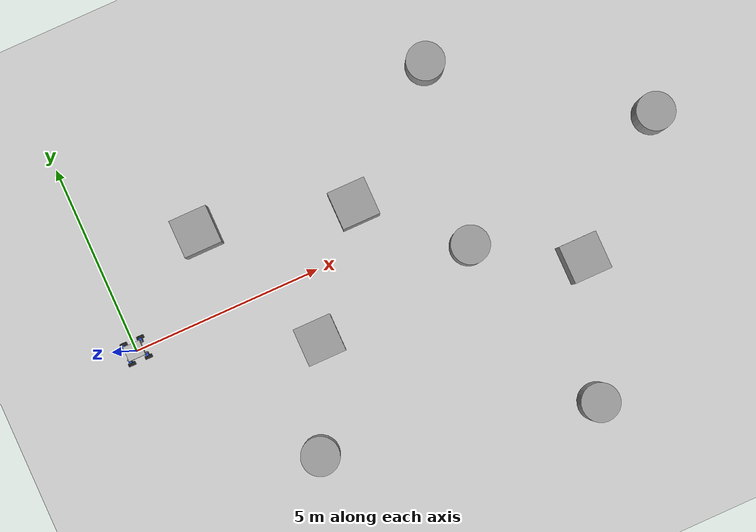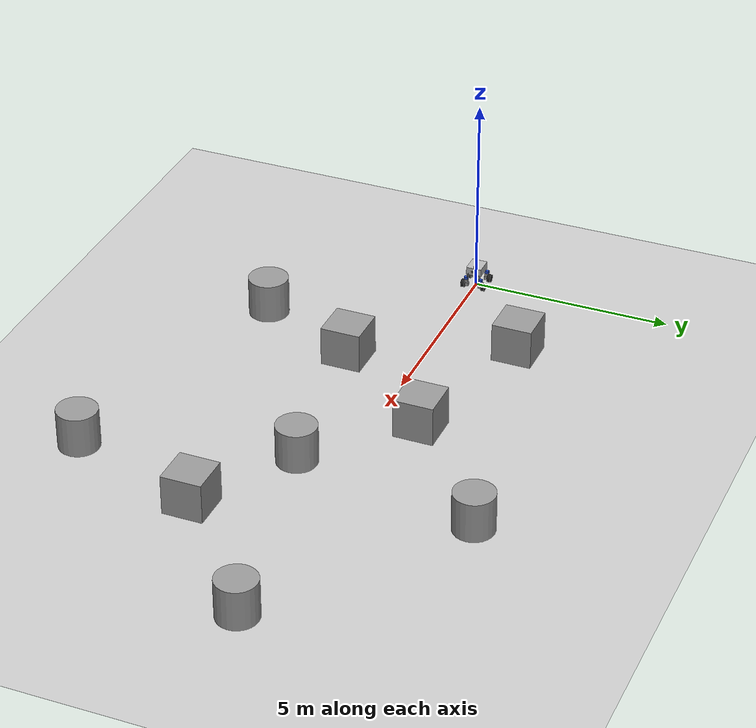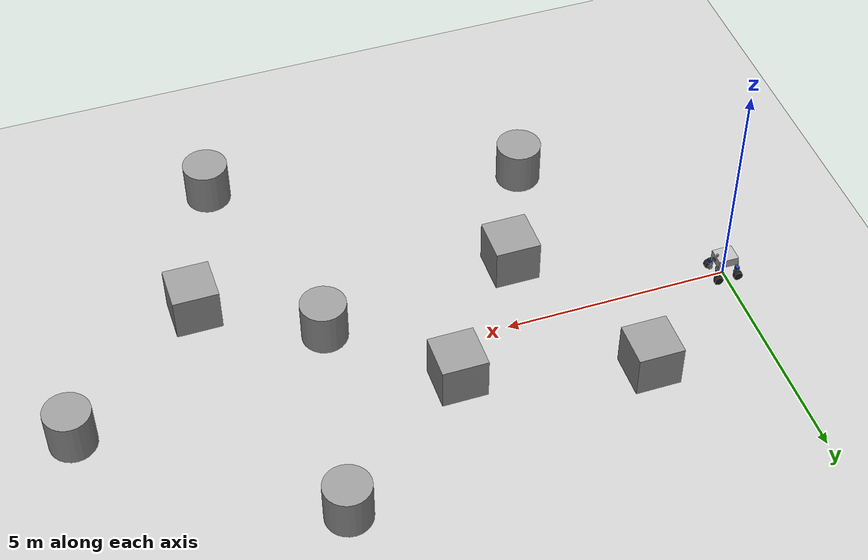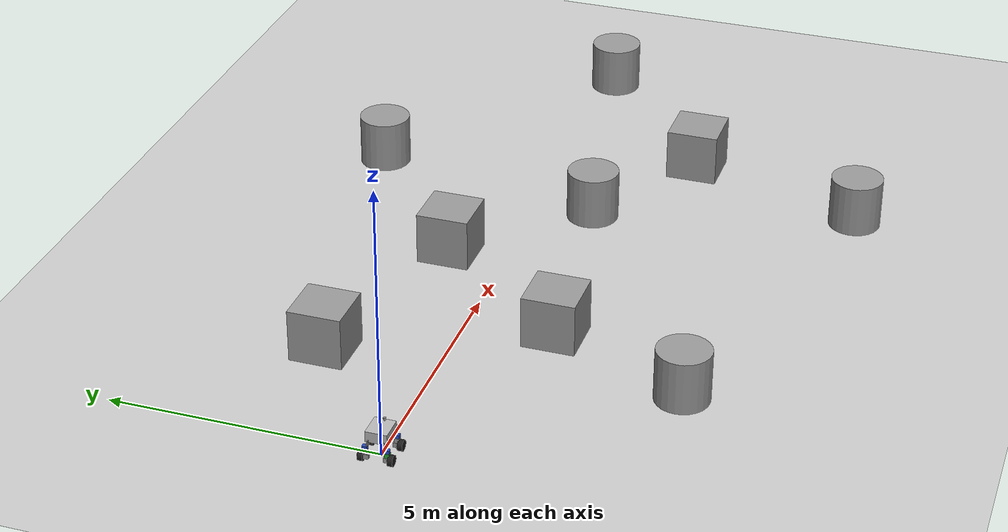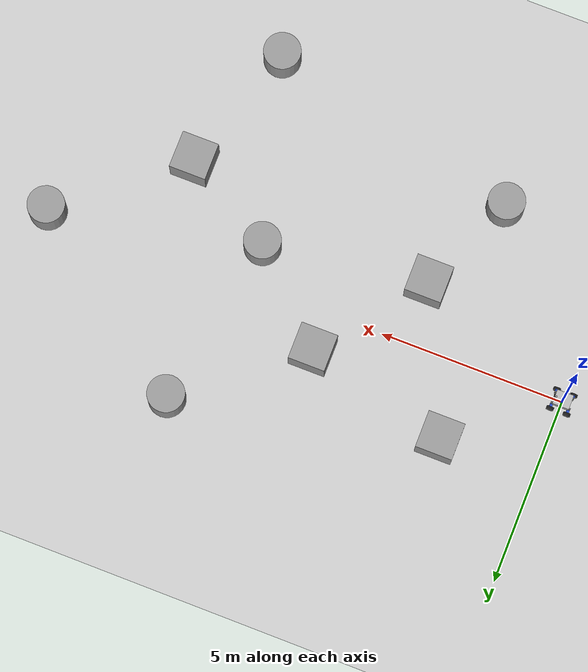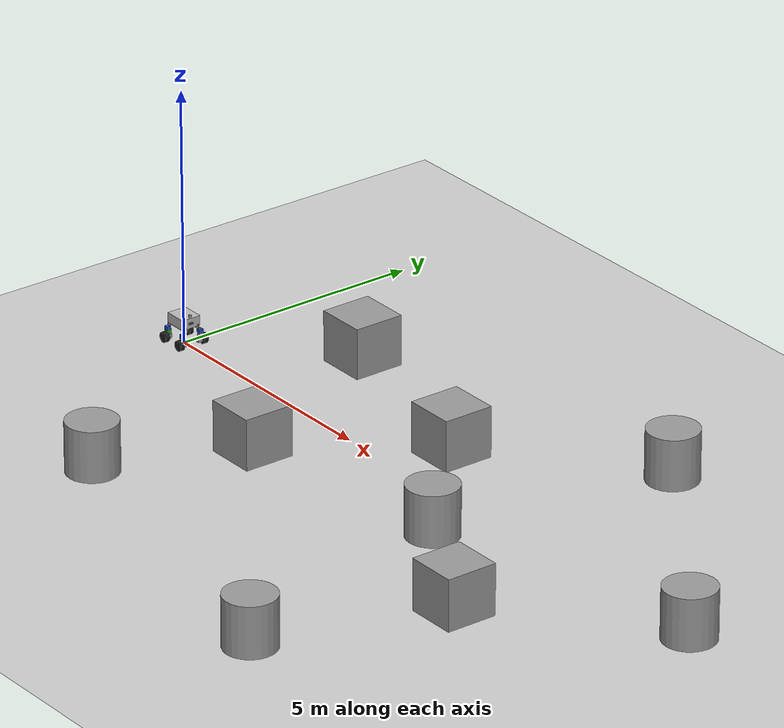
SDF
<sdf version="1.6">
 <world name="default">
  <light name="sun" type="directional">
   <pose>0 0 10 0 -0 0</pose>
   <diffuse>0.8 0.8 0.8 1</diffuse>
   <specular>0.2 0.2 0.2 1</specular>
   <attenuation>
    <range>1000</range>
    <constant>0.9</constant>
    <linear>0.01</linear>
    <quadratic>0.001</quadratic>
   </attenuation>
   <direction>-0.5 0.1 -0.9</direction>
  </light>
  <model name="ground_plane">
   <static>1</static>
   <link name="link">
    <collision name="collision">
     <geometry><plane><normal>0 0 1</normal><size>100 100</size></plane></geometry>
     <surface>
      <contact><collide_bitmask>65535</collide_bitmask></contact>
      <friction><ode><mu>100</mu><mu2>50</mu2></ode></friction>
     </surface>
    </collision>
    <visual name="visual">
     <cast_shadows>0</cast_shadows>
     <geometry><plane><normal>0 0 1</normal><size>100 100</size></plane></geometry>
     <material>
      <script><uri>file://media/materials/scripts/gazebo.material</uri><name>Gazebo/Grey</name></script>
     </material>
    </visual>
   </link>
  </model>
  <gravity>0 0 -9.8</gravity>
  <magnetic_field>6e-06 2.3e-05 -4.2e-05</magnetic_field>
  <atmosphere type="adiabatic"/>
  <physics name="default_physics" default="0" type="ode">
   <max_step_size>0.001</max_step_size>
   <real_time_factor>1</real_time_factor>
   <real_time_update_rate>1000</real_time_update_rate>
  </physics>
  <scene><ambient>0.4 0.4 0.4 1</ambient><background>0.7 0.7 0.7 1</background><shadows>1</shadows></scene>
  <audio><device>default</device></audio>
  <spherical_coordinates>
   <surface_model>EARTH_WGS84</surface_model>
   <latitude_deg>0</latitude_deg>
   <longitude_deg>0</longitude_deg>
   <elevation>0</elevation>
   <heading_deg>0</heading_deg>
  </spherical_coordinates>
  <model name="PF1">
   <link name="base_link">
    <inertial>
     <pose>0.001417 -0 -0.148259 0 -0 0</pose>
     <mass>94.564</mass>
     <inertia>
      <ixx>17.0555</ixx>
      <ixy>-5.61402e-17</ixy>
      <ixz>-0.0198593</ixz>
      <iyy>17.8862</iyy>
      <iyz>6.58404e-17</iyz>
      <izz>16.8882</izz>
     </inertia>
    </inertial>
    <collision name="base_link_collision"><geometry><box><size>0.45 0.39 0.2</size></box></geometry></collision>
    <collision name="base_link_fixed_joint_lump__base_sensor_collision_1">
     <geometry><cylinder><length>0.01</length><radius>0.005</radius></cylinder></geometry>
    </collision>
    <collision name="base_link_fixed_joint_lump__camera_link_collision_2">
     <pose>0.2375 -0.0175 0 0 -0 0</pose>
     <geometry><box><size>0.02505 0.09 0.025</size></box></geometry>
     <surface>
      <contact><ode><kp>1e+13</kp><kd>1</kd></ode></contact>
      <friction><ode><mu2>1</mu2><fdir1>0 0 0</fdir1></ode></friction>
     </surface>
    </collision>
    <collision name="base_link_fixed_joint_lump__front_lidar_collision_3">
     <pose>0.19 0 0.125 0 -0 0</pose>
     <geometry><cylinder><length>0.05</length><radius>0.025</radius></cylinder></geometry>
    </collision>
    <collision name="base_link_fixed_joint_lump__frame1_bl_collision_4">
     <pose>-0.135 0.14 -0.1 0 -0 0</pose>
     <geometry><box><size>0.27 0.02 0.09</size></box></geometry>
    </collision>
    <collision name="base_link_fixed_joint_lump__frame2_bl_collision_5">
     <pose>-0.23 0.16 -0.145 0 -0 0</pose>
     <geometry><box><size>0.08 0.02 0.05</size></box></geometry>
    </collision>
    <collision name="base_link_fixed_joint_lump__gear_bl_collision_6">
     <pose>-0.23 0.195 -0.205 0 -0 0</pose>
     <geometry><box><size>0.075 0.09 0.07</size></box></geometry>
    </collision>
    <collision name="base_link_fixed_joint_lump__frame3_bl_collision_7">
     <pose>-0.23 0.195 -0.285 0 -0 0</pose>
     <geometry><box><size>0.075 0.09 0.09</size></box></geometry>
     <surface><friction><ode><mu>2500</mu><mu2>2500</mu2></ode></friction></surface>
    </collision>
    <collision name="base_link_fixed_joint_lump__motor_bl_collision_8">
     <pose>-0.23 0.175 -0.375 0 -0 0</pose>
     <geometry><box><size>0.075 0.09 0.09</size></box></geometry>
    </collision>
    <collision name="base_link_fixed_joint_lump__frame1_br_collision_9">
     <pose>-0.135 -0.14 -0.1 0 -0 0</pose>
     <geometry><box><size>0.27 0.02 0.09</size></box></geometry>
    </collision>
    <collision name="base_link_fixed_joint_lump__frame2_br_collision_10">
     <pose>-0.23 -0.16 -0.145 0 -0 0</pose>
     <geometry><box><size>0.08 0.02 0.05</size></box></geometry>
    </collision>
    <collision name="base_link_fixed_joint_lump__gear_br_collision_11">
     <pose>-0.23 -0.195 -0.205 0 -0 0</pose>
     <geometry><box><size>0.075 0.09 0.07</size></box></geometry>
    </collision>
    <collision name="base_link_fixed_joint_lump__frame3_br_collision_12">
     <pose>-0.23 -0.195 -0.285 0 -0 0</pose>
     <geometry><box><size>0.075 0.09 0.09</size></box></geometry>
     <surface><friction><ode><mu>2500</mu><mu2>2500</mu2></ode></friction></surface>
    </collision>
    <collision name="base_link_fixed_joint_lump__motor_br_collision_13">
     <pose>-0.23 -0.175 -0.375 0 -0 0</pose>
     <geometry><box><size>0.075 0.09 0.09</size></box></geometry>
    </collision>
    <collision name="base_link_fixed_joint_lump__frame1_fl_collision_14">
     <pose>0.135 0.14 -0.1 0 -0 0</pose>
     <geometry><box><size>0.27 0.02 0.09</size></box></geometry>
    </collision>
    <collision name="base_link_fixed_joint_lump__frame2_fl_collision_15">
     <pose>0.23 0.16 -0.145 0 -0 0</pose>
     <geometry><box><size>0.08 0.02 0.05</size></box></geometry>
    </collision>
    <collision name="base_link_fixed_joint_lump__gear_fl_collision_16">
     <pose>0.23 0.195 -0.205 0 -0 0</pose>
     <geometry><box><size>0.075 0.09 0.07</size></box></geometry>
    </collision>
    <collision name="base_link_fixed_joint_lump__frame3_fl_collision_17">
     <pose>0.23 0.195 -0.285 0 -0 0</pose>
     <geometry><box><size>0.075 0.09 0.09</size></box></geometry>
     <surface><friction><ode><mu>2500</mu><mu2>2500</mu2></ode></friction></surface>
    </collision>
    <collision name="base_link_fixed_joint_lump__motor_fl_collision_18">
     <pose>0.23 0.175 -0.375 0 -0 0</pose>
     <geometry><box><size>0.075 0.09 0.09</size></box></geometry>
    </collision>
    <collision name="base_link_fixed_joint_lump__frame1_fr_collision_19">
     <pose>0.135 -0.14 -0.1 0 -0 0</pose>
     <geometry><box><size>0.27 0.02 0.09</size></box></geometry>
    </collision>
    <collision name="base_link_fixed_joint_lump__frame2_fr_collision_20">
     <pose>0.23 -0.16 -0.145 0 -0 0</pose>
     <geometry><box><size>0.08 0.02 0.05</size></box></geometry>
    </collision>
    <collision name="base_link_fixed_joint_lump__gear_fr_collision_21">
     <pose>0.23 -0.195 -0.205 0 -0 0</pose>
     <geometry><box><size>0.075 0.09 0.07</size></box></geometry>
    </collision>
    <collision name="base_link_fixed_joint_lump__frame3_fr_collision_22">
     <pose>0.23 -0.195 -0.285 0 -0 0</pose>
     <geometry><box><size>0.075 0.09 0.09</size></box></geometry>
     <surface><friction><ode><mu>2500</mu><mu2>2500</mu2></ode></friction></surface>
    </collision>
    <collision name="base_link_fixed_joint_lump__motor_fr_collision_23">
     <pose>0.23 -0.175 -0.375 0 -0 0</pose>
     <geometry><box><size>0.075 0.09 0.09</size></box></geometry>
    </collision>
    <collision name="base_link_fixed_joint_lump__imu_link_collision_24">
     <geometry><cylinder><length>0.01</length><radius>0.005</radius></cylinder></geometry>
    </collision>
    <visual name="base_link_visual"><geometry><box><size>0.45 0.39 0.2</size></box></geometry></visual>
    <visual name="base_link_fixed_joint_lump__base_sensor_visual_1">
     <geometry><cylinder><length>0.01</length><radius>0.005</radius></cylinder></geometry>
    </visual>
    <visual name="base_link_fixed_joint_lump__camera_link_visual_2">
     <pose>0.2375 -0.0175 0 1.5708 -0 1.5708</pose>
     <geometry><box><size>0.09 0.025 0.02505</size></box></geometry>
     <material>
      <script><name>Gazebo/Black</name><uri>file://media/materials/scripts/gazebo.material</uri></script>
     </material>
    </visual>
    <visual name="base_link_fixed_joint_lump__front_lidar_visual_3">
     <pose>0.19 0 0.125 0 -0 0</pose>
     <geometry><cylinder><length>0.05</length><radius>0.025</radius></cylinder></geometry>
     <material>
      <script><name>Gazebo/Grey</name><uri>file://media/materials/scripts/gazebo.material</uri></script>
     </material>
    </visual>
    <visual name="base_link_fixed_joint_lump__frame1_bl_visual_4">
     <pose>-0.135 0.14 -0.1 0 -0 0</pose>
     <geometry><box><size>0.27 0.02 0.09</size></box></geometry>
     <material>
      <script><name>Gazebo/Grey</name><uri>file://media/materials/scripts/gazebo.material</uri></script>
     </material>
    </visual>
    <visual name="base_link_fixed_joint_lump__frame2_bl_visual_5">
     <pose>-0.23 0.16 -0.145 0 -0 0</pose>
     <geometry><box><size>0.08 0.02 0.05</size></box></geometry>
     <material>
      <script><name>Gazebo/Grey</name><uri>file://media/materials/scripts/gazebo.material</uri></script>
     </material>
    </visual>
    <visual name="base_link_fixed_joint_lump__gear_bl_visual_6">
     <pose>-0.23 0.195 -0.205 0 -0 0</pose>
     <geometry><box><size>0.075 0.09 0.07</size></box></geometry>
     <material>
      <script><name>Gazebo/Blue</name><uri>file://media/materials/scripts/gazebo.material</uri></script>
     </material>
    </visual>
    <visual name="base_link_fixed_joint_lump__frame3_bl_visual_7">
     <pose>-0.23 0.195 -0.285 0 -0 0</pose>
     <geometry><box><size>0.075 0.09 0.09</size></box></geometry>
     <material>
      <script><name>Gazebo/Grey</name><uri>file://media/materials/scripts/gazebo.material</uri></script>
     </material>
    </visual>
    <visual name="base_link_fixed_joint_lump__motor_bl_visual_8">
     <pose>-0.23 0.175 -0.375 0 -0 0</pose>
     <geometry><box><size>0.075 0.09 0.09</size></box></geometry>
     <material>
      <script><name>Gazebo/Grey</name><uri>file://media/materials/scripts/gazebo.material</uri></script>
     </material>
    </visual>
    <visual name="base_link_fixed_joint_lump__frame1_br_visual_9">
     <pose>-0.135 -0.14 -0.1 0 -0 0</pose>
     <geometry><box><size>0.27 0.02 0.09</size></box></geometry>
     <material>
      <script><name>Gazebo/Grey</name><uri>file://media/materials/scripts/gazebo.material</uri></script>
     </material>
    </visual>
    <visual name="base_link_fixed_joint_lump__frame2_br_visual_10">
     <pose>-0.23 -0.16 -0.145 0 -0 0</pose>
     <geometry><box><size>0.08 0.02 0.05</size></box></geometry>
     <material>
      <script><name>Gazebo/Grey</name><uri>file://media/materials/scripts/gazebo.material</uri></script>
     </material>
    </visual>
    <visual name="base_link_fixed_joint_lump__gear_br_visual_11">
     <pose>-0.23 -0.195 -0.205 0 -0 0</pose>
     <geometry><box><size>0.075 0.09 0.07</size></box></geometry>
     <material>
      <script><name>Gazebo/Blue</name><uri>file://media/materials/scripts/gazebo.material</uri></script>
     </material>
    </visual>
    <visual name="base_link_fixed_joint_lump__frame3_br_visual_12">
     <pose>-0.23 -0.195 -0.285 0 -0 0</pose>
     <geometry><box><size>0.075 0.09 0.09</size></box></geometry>
     <material>
      <script><name>Gazebo/Green</name><uri>file://media/materials/scripts/gazebo.material</uri></script>
     </material>
    </visual>
    <visual name="base_link_fixed_joint_lump__motor_br_visual_13">
     <pose>-0.23 -0.175 -0.375 0 -0 0</pose>
     <geometry><box><size>0.075 0.09 0.09</size></box></geometry>
     <material>
      <script><name>Gazebo/Grey</name><uri>file://media/materials/scripts/gazebo.material</uri></script>
     </material>
    </visual>
    <visual name="base_link_fixed_joint_lump__frame1_fl_visual_14">
     <pose>0.135 0.14 -0.1 0 -0 0</pose>
     <geometry><box><size>0.27 0.02 0.09</size></box></geometry>
     <material>
      <script><name>Gazebo/Grey</name><uri>file://media/materials/scripts/gazebo.material</uri></script>
     </material>
    </visual>
    <visual name="base_link_fixed_joint_lump__frame2_fl_visual_15">
     <pose>0.23 0.16 -0.145 0 -0 0</pose>
     <geometry><box><size>0.08 0.02 0.05</size></box></geometry>
     <material>
      <script><name>Gazebo/Grey</name><uri>file://media/materials/scripts/gazebo.material</uri></script>
     </material>
    </visual>
    <visual name="base_link_fixed_joint_lump__gear_fl_visual_16">
     <pose>0.23 0.195 -0.205 0 -0 0</pose>
     <geometry><box><size>0.075 0.09 0.07</size></box></geometry>
     <material>
      <script><name>Gazebo/Blue</name><uri>file://media/materials/scripts/gazebo.material</uri></script>
     </material>
    </visual>
    <visual name="base_link_fixed_joint_lump__frame3_fl_visual_17">
     <pose>0.23 0.195 -0.285 0 -0 0</pose>
     <geometry><box><size>0.075 0.09 0.09</size></box></geometry>
     <material>
      <script><name>Gazebo/Grey</name><uri>file://media/materials/scripts/gazebo.material</uri></script>
     </material>
    </visual>
    <visual name="base_link_fixed_joint_lump__motor_fl_visual_18">
     <pose>0.23 0.175 -0.375 0 -0 0</pose>
     <geometry><box><size>0.075 0.09 0.09</size></box></geometry>
     <material>
      <script><name>Gazebo/Grey</name><uri>file://media/materials/scripts/gazebo.material</uri></script>
     </material>
    </visual>
    <visual name="base_link_fixed_joint_lump__frame1_fr_visual_19">
     <pose>0.135 -0.14 -0.1 0 -0 0</pose>
     <geometry><box><size>0.27 0.02 0.09</size></box></geometry>
     <material>
      <script><name>Gazebo/Grey</name><uri>file://media/materials/scripts/gazebo.material</uri></script>
     </material>
    </visual>
    <visual name="base_link_fixed_joint_lump__frame2_fr_visual_20">
     <pose>0.23 -0.16 -0.145 0 -0 0</pose>
     <geometry><box><size>0.08 0.02 0.05</size></box></geometry>
     <material>
      <script><name>Gazebo/Grey</name><uri>file://media/materials/scripts/gazebo.material</uri></script>
     </material>
    </visual>
    <visual name="base_link_fixed_joint_lump__gear_fr_visual_21">
     <pose>0.23 -0.195 -0.205 0 -0 0</pose>
     <geometry><box><size>0.075 0.09 0.07</size></box></geometry>
     <material>
      <script><name>Gazebo/Blue</name><uri>file://media/materials/scripts/gazebo.material</uri></script>
     </material>
    </visual>
    <visual name="base_link_fixed_joint_lump__frame3_fr_visual_22">
     <pose>0.23 -0.195 -0.285 0 -0 0</pose>
     <geometry><box><size>0.075 0.09 0.09</size></box></geometry>
     <material>
      <script><name>Gazebo/Grey</name><uri>file://media/materials/scripts/gazebo.material</uri></script>
     </material>
    </visual>
    <visual name="base_link_fixed_joint_lump__motor_fr_visual_23">
     <pose>0.23 -0.175 -0.375 0 -0 0</pose>
     <geometry><box><size>0.075 0.09 0.09</size></box></geometry>
     <material>
      <script><name>Gazebo/Grey</name><uri>file://media/materials/scripts/gazebo.material</uri></script>
     </material>
    </visual>
    <visual name="base_link_fixed_joint_lump__imu_link_visual_24">
     <geometry><cylinder><length>0.01</length><radius>0.005</radius></cylinder></geometry>
     <material>
      <script><name>Gazebo/Blue</name><uri>file://media/materials/scripts/gazebo.material</uri></script>
     </material>
    </visual>
    <sensor name="cameracolor" type="camera">
     <camera name="camera">
      <horizontal_fov>1.21126</horizontal_fov>
      <image><width>640</width><height>480</height><format>RGB_INT8</format></image>
      <clip><near>0.1</near><far>100</far></clip>
      <noise><type>gaussian</type><mean>0</mean><stddev>0.007</stddev></noise>
     </camera>
     <always_on>1</always_on>
     <update_rate>30</update_rate>
     <visualize>1</visualize>
     <pose>0.2375 0 0 0 -0 0</pose>
    </sensor>
    <sensor name="cameraired1" type="camera">
     <camera name="camera">
      <horizontal_fov>1.48702</horizontal_fov>
      <image><width>1280</width><height>720</height><format>L_INT8</format></image>
      <clip><near>0.1</near><far>100</far></clip>
      <noise><type>gaussian</type><mean>0</mean><stddev>0.05</stddev></noise>
     </camera>
     <always_on>1</always_on>
     <update_rate>90</update_rate>
     <visualize>0</visualize>
     <pose>0.2375 0 0 0 -0 0</pose>
    </sensor>
    <sensor name="cameraired2" type="camera">
     <camera name="camera">
      <horizontal_fov>1.48702</horizontal_fov>
      <image><width>1280</width><height>720</height><format>L_INT8</format></image>
      <clip><near>0.1</near><far>100</far></clip>
      <noise><type>gaussian</type><mean>0</mean><stddev>0.05</stddev></noise>
     </camera>
     <always_on>1</always_on>
     <update_rate>90</update_rate>
     <visualize>0</visualize>
     <pose>0.2375 0 0 0 -0 0</pose>
    </sensor>
    <sensor name="cameradepth" type="depth">
     <camera name="camera">
      <horizontal_fov>1.48702</horizontal_fov>
      <image><width>1280</width><height>720</height></image>
      <clip><near>0.1</near><far>100</far></clip>
      <noise><type>gaussian</type><mean>0</mean><stddev>0.1</stddev></noise>
     </camera>
     <always_on>1</always_on>
     <update_rate>90</update_rate>
     <visualize>0</visualize>
     <pose>0.2375 0 0 0 -0 0</pose>
    </sensor>
    <sensor name="$front_lidar_sensor" type="ray">
     <visualize>1</visualize>
     <update_rate>10</update_rate>
     <ray>
      <scan>
       <horizontal>
        <samples>400</samples>
        <resolution>1</resolution>
        <min_angle>-1.5708</min_angle>
        <max_angle>1.5708</max_angle>
       </horizontal>
       <vertical><samples>1</samples><min_angle>0</min_angle><max_angle>0</max_angle></vertical>
      </scan>
      <range><min>0.1</min><max>20</max><resolution>0.01</resolution></range>
      <noise><type>gaussian</type><mean>0</mean><stddev>0.01</stddev></noise>
     </ray>
     <plugin name="gazebo_ros_lidar_controller" filename="libgazebo_ros_laser.so">
      <topicName>scan</topicName>
      <frameName>front_lidar</frameName>
      <robotNamespace>/</robotNamespace>
     </plugin>
     <pose>0.19 0 0.125 0 -0 0</pose>
    </sensor>
    <sensor name="imu_sensor" type="imu">
     <always_on>1</always_on>
     <update_rate>100</update_rate>
     <visualize>1</visualize>
     <topic>data</topic>
     <plugin name="imu_plugin" filename="libgazebo_ros_imu_sensor.so">
      <topicName>imu/data</topicName>
      <bodyName>imu_link</bodyName>
      <updateRateHZ>10.0</updateRateHZ>
      <gaussianNoise>0.0</gaussianNoise>
      <xyzOffset>0 0 0</xyzOffset>
      <rpyOffset>0 0 0</rpyOffset>
      <frameName>imu_link</frameName>
      <robotNamespace>/</robotNamespace>
     </plugin>
    </sensor>
   </link>
   <link name="wheel_bl">
    <pose>-0.23 0.265 -0.375 0 -0 0</pose>
    <inertial>
     <mass>10</mass>
     <inertia><ixx>1</ixx><ixy>0</ixy><ixz>0</ixz><iyy>1</iyy><iyz>0</iyz><izz>1</izz></inertia>
    </inertial>
    <collision name="wheel_bl_collision">
     <pose>0 0 0 1.57 -0 0</pose>
     <geometry><cylinder><length>0.09</length><radius>0.1</radius></cylinder></geometry>
     <surface>
      <contact><ode><kp>1e+07</kp><kd>1</kd></ode></contact>
      <friction><ode><mu>200</mu><mu2>100</mu2></ode></friction>
     </surface>
    </collision>
    <visual name="wheel_bl_visual">
     <pose>0 0 0 1.57 -0 0</pose>
     <geometry><cylinder><length>0.09</length><radius>0.1</radius></cylinder></geometry>
     <material>
      <script><name>Gazebo/Black</name><uri>file://media/materials/scripts/gazebo.material</uri></script>
     </material>
    </visual>
   </link>
   <joint name="wheel_bl_to_motor_bl" type="revolute">
    <child>wheel_bl</child>
    <parent>base_link</parent>
    <axis>
     <xyz>0 1 0</xyz>
     <limit><lower>-1e+16</lower><upper>1e+16</upper></limit>
     <dynamics>
      <damping>0.1</damping>
      <friction>0</friction>
      <spring_reference>0</spring_reference>
      <spring_stiffness>0</spring_stiffness>
     </dynamics>
     <use_parent_model_frame>1</use_parent_model_frame>
    </axis>
   </joint>
   <link name="wheel_br">
    <pose>-0.23 -0.265 -0.375 0 -0 0</pose>
    <inertial>
     <mass>10</mass>
     <inertia><ixx>1</ixx><ixy>0</ixy><ixz>0</ixz><iyy>1</iyy><iyz>0</iyz><izz>1</izz></inertia>
    </inertial>
    <collision name="wheel_br_collision">
     <pose>0 0 0 1.57 -0 0</pose>
     <geometry><cylinder><length>0.09</length><radius>0.1</radius></cylinder></geometry>
     <surface>
      <contact><ode><kp>1e+07</kp><kd>1</kd></ode></contact>
      <friction><ode><mu>200</mu><mu2>100</mu2></ode></friction>
     </surface>
    </collision>
    <visual name="wheel_br_visual">
     <pose>0 0 0 1.57 -0 0</pose>
     <geometry><cylinder><length>0.09</length><radius>0.1</radius></cylinder></geometry>
     <material>
      <script><name>Gazebo/Black</name><uri>file://media/materials/scripts/gazebo.material</uri></script>
     </material>
    </visual>
   </link>
   <joint name="wheel_br_to_motor_br" type="revolute">
    <child>wheel_br</child>
    <parent>base_link</parent>
    <axis>
     <xyz>0 1 0</xyz>
     <limit><lower>-1e+16</lower><upper>1e+16</upper></limit>
     <dynamics>
      <damping>0.1</damping>
      <friction>0</friction>
      <spring_reference>0</spring_reference>
      <spring_stiffness>0</spring_stiffness>
     </dynamics>
     <use_parent_model_frame>1</use_parent_model_frame>
    </axis>
   </joint>
   <link name="wheel_fl">
    <pose>0.23 0.265 -0.375 0 -0 0</pose>
    <inertial>
     <mass>10</mass>
     <inertia><ixx>1</ixx><ixy>0</ixy><ixz>0</ixz><iyy>1</iyy><iyz>0</iyz><izz>1</izz></inertia>
    </inertial>
    <collision name="wheel_fl_collision">
     <pose>0 0 0 1.57 -0 0</pose>
     <geometry><cylinder><length>0.09</length><radius>0.1</radius></cylinder></geometry>
     <surface>
      <contact><ode><kp>1e+07</kp><kd>1</kd></ode></contact>
      <friction><ode><mu>200</mu><mu2>100</mu2></ode></friction>
     </surface>
    </collision>
    <visual name="wheel_fl_visual">
     <pose>0 0 0 1.57 -0 0</pose>
     <geometry><cylinder><length>0.09</length><radius>0.1</radius></cylinder></geometry>
     <material>
      <script><name>Gazebo/Black</name><uri>file://media/materials/scripts/gazebo.material</uri></script>
     </material>
    </visual>
   </link>
   <joint name="wheel_fl_to_motor_fl" type="revolute">
    <child>wheel_fl</child>
    <parent>base_link</parent>
    <axis>
     <xyz>0 1 0</xyz>
     <limit><lower>-1e+16</lower><upper>1e+16</upper></limit>
     <dynamics>
      <damping>0.1</damping>
      <friction>0</friction>
      <spring_reference>0</spring_reference>
      <spring_stiffness>0</spring_stiffness>
     </dynamics>
     <use_parent_model_frame>1</use_parent_model_frame>
    </axis>
   </joint>
   <link name="wheel_fr">
    <pose>0.23 -0.265 -0.375 0 -0 0</pose>
    <inertial>
     <mass>10</mass>
     <inertia><ixx>1</ixx><ixy>0</ixy><ixz>0</ixz><iyy>1</iyy><iyz>0</iyz><izz>1</izz></inertia>
    </inertial>
    <collision name="wheel_fr_collision">
     <pose>0 0 0 1.57 -0 0</pose>
     <geometry><cylinder><length>0.09</length><radius>0.1</radius></cylinder></geometry>
     <surface>
      <contact><ode><kp>1e+07</kp><kd>1</kd></ode></contact>
      <friction><ode><mu>200</mu><mu2>100</mu2></ode></friction>
     </surface>
    </collision>
    <visual name="wheel_fr_visual">
     <pose>0 0 0 1.57 -0 0</pose>
     <geometry><cylinder><length>0.09</length><radius>0.1</radius></cylinder></geometry>
     <material>
      <script><name>Gazebo/Black</name><uri>file://media/materials/scripts/gazebo.material</uri></script>
     </material>
    </visual>
   </link>
   <joint name="wheel_fr_to_motor_fr" type="revolute">
    <child>wheel_fr</child>
    <parent>base_link</parent>
    <axis>
     <xyz>0 1 0</xyz>
     <limit><lower>-1e+16</lower><upper>1e+16</upper></limit>
     <dynamics>
      <damping>0.1</damping>
      <friction>0</friction>
      <spring_reference>0</spring_reference>
      <spring_stiffness>0</spring_stiffness>
     </dynamics>
     <use_parent_model_frame>1</use_parent_model_frame>
    </axis>
   </joint>
   <plugin name="camera" filename="librealsense_gazebo_plugin.so">
    <prefix>camera</prefix>
    <depthUpdateRate>30.0</depthUpdateRate>
    <colorUpdateRate>30.0</colorUpdateRate>
    <infraredUpdateRate>30.0</infraredUpdateRate>
    <depthTopicName>depth/image_raw</depthTopicName>
    <depthCameraInfoTopicName>depth/camera_info</depthCameraInfoTopicName>
    <colorTopicName>color/image_raw</colorTopicName>
    <colorCameraInfoTopicName>color/camera_info</colorCameraInfoTopicName>
    <infrared1TopicName>infra1/image_raw</infrared1TopicName>
    <infrared1CameraInfoTopicName>infra1/camera_info</infrared1CameraInfoTopicName>
    <infrared2TopicName>infra2/image_raw</infrared2TopicName>
    <infrared2CameraInfoTopicName>infra2/camera_info</infrared2CameraInfoTopicName>
    <colorOpticalframeName>color_optical_frame</colorOpticalframeName>
    <depthOpticalframeName>depth_optical_frame</depthOpticalframeName>
    <infrared1OpticalframeName>infrared1_optical_frame</infrared1OpticalframeName>
    <infrared2OpticalframeName>infrared2_optical_frame</infrared2OpticalframeName>
    <rangeMinDepth>0.2</rangeMinDepth>
    <rangeMaxDepth>10.0</rangeMaxDepth>
    <pointCloud>1</pointCloud>
    <pointCloudTopicName>depth/color/points</pointCloudTopicName>
    <pointCloudCutoff>0.25</pointCloudCutoff>
    <pointCloudCutoffMax>9.0</pointCloudCutoffMax>
    <robotNamespace>/</robotNamespace>
   </plugin>
   <static>0</static>
   <plugin name="gazebo_ros_control" filename="libgazebo_ros_control.so">
    <robotNamespace>/</robotNamespace>
    <robotSimType>gazebo_ros_control/DefaultRobotHWSim</robotSimType>
    <legacyModeNS>1</legacyModeNS>
   </plugin>
   <pose>-0.00014 -2e-06 0.474964 4e-06 2e-06 -0</pose>
  </model>
  <model name="unit_box">
   <pose>4.34495 -1.65502 0.499995 0 1e-05 0</pose>
   <link name="link">
    <inertial>
     <mass>1</mass>
     <inertia>
      <ixx>0.166667</ixx>
      <ixy>0</ixy>
      <ixz>0</ixz>
      <iyy>0.166667</iyy>
      <iyz>0</iyz>
      <izz>0.166667</izz>
     </inertia>
    </inertial>
    <collision name="collision"><geometry><box><size>1 1 1</size></box></geometry></collision>
    <visual name="visual">
     <geometry><box><size>1 1 1</size></box></geometry>
     <material>
      <script><name>Gazebo/Grey</name><uri>file://media/materials/scripts/gazebo.material</uri></script>
     </material>
    </visual>
   </link>
  </model>
  <model name="unit_box_0">
   <pose>6.50802 1.0975 0.499995 -1e-05 -0 -0</pose>
   <link name="link">
    <inertial>
     <mass>1</mass>
     <inertia>
      <ixx>0.166667</ixx>
      <ixy>0</ixy>
      <ixz>0</ixz>
      <iyy>0.166667</iyy>
      <iyz>0</iyz>
      <izz>0.166667</izz>
     </inertia>
    </inertial>
    <collision name="collision"><geometry><box><size>1 1 1</size></box></geometry></collision>
    <visual name="visual">
     <geometry><box><size>1 1 1</size></box></geometry>
     <material>
      <script><name>Gazebo/Grey</name><uri>file://media/materials/scripts/gazebo.material</uri></script>
     </material>
    </visual>
   </link>
  </model>
  <model name="unit_box_1">
   <pose>2.63033 2.07097 0.499995 0 1e-05 0</pose>
   <link name="link">
    <inertial>
     <mass>1</mass>
     <inertia>
      <ixx>0.166667</ixx>
      <ixy>0</ixy>
      <ixz>0</ixz>
      <iyy>0.166667</iyy>
      <iyz>0</iyz>
      <izz>0.166667</izz>
     </inertia>
    </inertial>
    <collision name="collision"><geometry><box><size>1 1 1</size></box></geometry></collision>
    <visual name="visual">
     <geometry><box><size>1 1 1</size></box></geometry>
     <material>
      <script><name>Gazebo/Grey</name><uri>file://media/materials/scripts/gazebo.material</uri></script>
     </material>
    </visual>
   </link>
  </model>
  <model name="unit_cylinder">
   <pose>8.73814 -1.03676 0.499998 3e-06 -4e-06 0</pose>
   <link name="link">
    <inertial>
     <mass>1</mass>
     <inertia><ixx>0.145833</ixx><ixy>0</ixy><ixz>0</ixz><iyy>0.145833</iyy><iyz>0</iyz><izz>0.125</izz></inertia>
    </inertial>
    <collision name="collision">
     <geometry><cylinder><radius>0.5</radius><length>1</length></cylinder></geometry>
    </collision>
    <visual name="visual">
     <geometry><cylinder><radius>0.5</radius><length>1</length></cylinder></geometry>
     <material>
      <script><name>Gazebo/Grey</name><uri>file://media/materials/scripts/gazebo.material</uri></script>
     </material>
    </visual>
   </link>
  </model>
  <model name="unit_cylinder_0">
   <pose>3.18546 -4.29007 0.499993 -3e-06 -3e-06 0</pose>
   <link name="link">
    <inertial>
     <mass>1</mass>
     <inertia><ixx>0.145833</ixx><ixy>0</ixy><ixz>0</ixz><iyy>0.145833</iyy><iyz>0</iyz><izz>0.125</izz></inertia>
    </inertial>
    <collision name="collision">
     <geometry><cylinder><radius>0.5</radius><length>1</length></cylinder></geometry>
    </collision>
    <visual name="visual">
     <geometry><cylinder><radius>0.5</radius><length>1</length></cylinder></geometry>
     <material>
      <script><name>Gazebo/Grey</name><uri>file://media/materials/scripts/gazebo.material</uri></script>
     </material>
    </visual>
   </link>
  </model>
  <model name="unit_cylinder_1">
   <pose>9.60293 3.60138 0.499997 3e-06 4e-06 -0</pose>
   <link name="link">
    <inertial>
     <mass>1</mass>
     <inertia><ixx>0.145833</ixx><ixy>0</ixy><ixz>0</ixz><iyy>0.145833</iyy><iyz>0</iyz><izz>0.125</izz></inertia>
    </inertial>
    <collision name="collision">
     <geometry><cylinder><radius>0.5</radius><length>1</length></cylinder></geometry>
    </collision>
    <visual name="visual">
     <geometry><cylinder><radius>0.5</radius><length>1</length></cylinder></geometry>
     <material>
      <script><name>Gazebo/Grey</name><uri>file://media/materials/scripts/gazebo.material</uri></script>
     </material>
    </visual>
   </link>
  </model>
  <model name="unit_cylinder_2">
   <pose>10.0722 -5.92557 0.499993 -3e-06 -4e-06 -0</pose>
   <link name="link">
    <inertial>
     <mass>1</mass>
     <inertia><ixx>0.145833</ixx><ixy>0</ixy><ixz>0</ixz><iyy>0.145833</iyy><iyz>0</iyz><izz>0.125</izz></inertia>
    </inertial>
    <collision name="collision">
     <geometry><cylinder><radius>0.5</radius><length>1</length></cylinder></geometry>
    </collision>
    <visual name="visual">
     <geometry><cylinder><radius>0.5</radius><length>1</length></cylinder></geometry>
     <material>
      <script><name>Gazebo/Grey</name><uri>file://media/materials/scripts/gazebo.material</uri></script>
     </material>
    </visual>
   </link>
  </model>
  <model name="unit_box_2">
   <pose>11.2124 -2.49126 0.499995 -1e-05 -0 0</pose>
   <link name="link">
    <inertial>
     <mass>1</mass>
     <inertia>
      <ixx>0.166667</ixx>
      <ixy>0</ixy>
      <ixz>0</ixz>
      <iyy>0.166667</iyy>
      <iyz>0</iyz>
      <izz>0.166667</izz>
     </inertia>
    </inertial>
    <collision name="collision"><geometry><box><size>1 1 1</size></box></geometry></collision>
    <visual name="visual">
     <geometry><box><size>1 1 1</size></box></geometry>
     <material>
      <script><name>Gazebo/Grey</name><uri>file://media/materials/scripts/gazebo.material</uri></script>
     </material>
    </visual>
   </link>
  </model>
  <model name="unit_cylinder_3">
   <pose>14.326 0.104148 0.499997 3e-06 4e-06 -0</pose>
   <link name="link">
    <inertial>
     <mass>1</mass>
     <inertia><ixx>0.145833</ixx><ixy>0</ixy><ixz>0</ixz><iyy>0.145833</iyy><iyz>0</iyz><izz>0.125</izz></inertia>
    </inertial>
    <collision name="collision">
     <geometry><cylinder><radius>0.5</radius><length>1</length></cylinder></geometry>
    </collision>
    <visual name="visual">
     <geometry><cylinder><radius>0.5</radius><length>1</length></cylinder></geometry>
     <material>
      <script><name>Gazebo/Grey</name><uri>file://media/materials/scripts/gazebo.material</uri></script>
     </material>
    </visual>
   </link>
  </model>
 </world>
</sdf>
